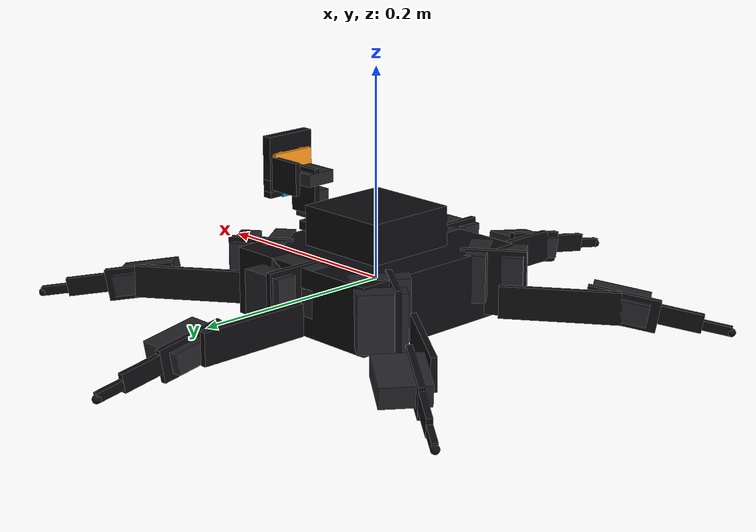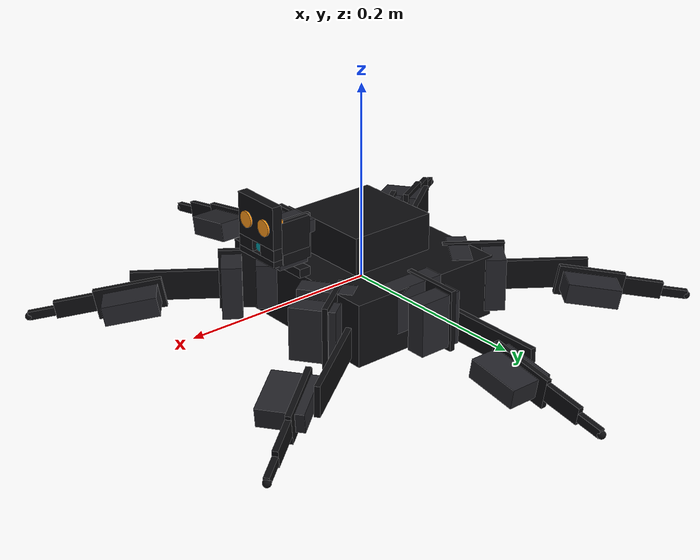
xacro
<?xml version="1.0"?>
<robot name="gerry" xmlns:xacro="http://www.ros.org/wiki/xacro">

    <xacro:property name="joint0_height" value="0.0318"/>
    <xacro:property name="joint1_offset_x" value="0.0333"/>
    <xacro:property name="joint1_offset_y" value="0.0118"/>  <!-- mirrored by side -->
    <xacro:property name="joint1_offset_z" value="-0.0393"/>
    <xacro:property name="link1_length" value="0.090"/>
    <xacro:property name="joint2_offset" value="${radians(10)}"/>  <!-- link 2's bend at joint 2 = 0 -->
    <xacro:property name="foot_offset_x" value="0.1115"/>
    <xacro:property name="foot_offset_y" value="0.0108"/>  <!-- mirrored by side -->
    <xacro:property name="foot_offset_z" value="-0.0058"/>

    <material name="frame"><color rgba="0.05 0.05 0.06 1"/></material>
    <material name="servo"><color rgba="0.14 0.14 0.16 1"/></material>
    <material name="ultrasonic"><color rgba="1.0 0.6 0.1 1"/></material>
    <material name="camera"><color rgba="0.0 0.6 0.65 1"/></material>

    <!-- one part, drawn and colliding -->
    <xacro:macro name="part" params="xyz rpy:='0 0 0' material:=frame *shape">
        <visual>
            <origin xyz="${xyz}" rpy="${rpy}"/>
            <geometry><xacro:insert_block name="shape"/></geometry>
            <material name="${material}"/>
        </visual>
        <collision>
            <origin xyz="${xyz}" rpy="${rpy}"/>
            <geometry><xacro:insert_block name="shape"/></geometry>
        </collision>
    </xacro:macro>

    <!-- mass and inertia about the centre of mass, from ml/hexai's CAD solve with each servo on the link it turns with -->
    <xacro:macro name="mass_properties" params="xyz mass ixx iyy izz ixy:=0 ixz:=0 iyz:=0">
        <inertial>
            <origin xyz="${xyz}"/>
            <mass value="${mass}"/>
            <inertia ixx="${ixx}" ixy="${ixy}" ixz="${ixz}" iyy="${iyy}" iyz="${iyz}" izz="${izz}"/>
        </inertial>
    </xacro:macro>

    <!-- one strip of the head's front plate; edges in mm in the robot frame -->
    <xacro:macro name="plate" params="y0 y1 z0 z1">
        <xacro:part xyz="0.029 ${(y0 + y1) / 2000} ${(z0 + z1) / 2000 - 0.0822}">
            <box size="0.010 ${(y1 - y0) / 1000} ${(z1 - z0) / 1000}"/>
        </xacro:part>
    </xacro:macro>

    <link name="base_link">
        <xacro:part xyz="0 0 0"><box size="0.167 0.190 0.0636"/></xacro:part>  <!-- main chassis -->
        <xacro:part xyz="0 0 0.0509"><box size="0.092 0.092 0.0381"/></xacro:part>  <!-- top cover -->
        <xacro:part xyz="0.083 0 0.0362"><box size="0.012 0.032 0.0088"/></xacro:part>  <!-- pan horn and its mount -->
    </link>

    <!-- the body's mass, on a child link since KDL ignores mass on the root -->
    <joint name="base_inertia_mount" type="fixed">
        <parent link="base_link"/>
        <child link="base_inertia"/>
    </joint>

    <link name="base_inertia">
        <xacro:mass_properties xyz="0.00524 -0.0001 0.00861" mass="0.7308" ixx="2.137e-3" iyy="2.135e-3" izz="2.393e-3" ixy="-1.198e-5" ixz="-9.502e-5" iyz="-1.374e-6"/>
    </link>

    <!-- side is +1 on the left, -1 on the right -->
    <xacro:macro name="leg" params="index x y yaw side">
        <joint name="leg${index}_joint0" type="revolute">
            <parent link="base_link"/>
            <child link="leg${index}_link0"/>
            <origin xyz="${x} ${y} ${joint0_height}" rpy="0 0 ${yaw}"/>
            <axis xyz="0 0 1"/>
            <limit lower="${-pi/2}" upper="${pi/2}" effort="1.0" velocity="5.0"/>
        </joint>

        <link name="leg${index}_link0">
            <xacro:mass_properties xyz="0.01717 ${-side*0.01049} -0.0248" mass="0.1337" ixx="4.691e-5" iyy="7.186e-5" izz="6.668e-5" ixy="${side*2.235e-6}" ixz="6.123e-6" iyz="${-side*5.939e-7}"/>
            <xacro:part xyz="0 ${-side*0.010} -0.0224" material="servo"><box size="0.020 0.054 0.045"/></xacro:part>  <!-- joint 0's servo -->
            <xacro:part xyz="0.0154 0 -0.0293"><box size="0.061 0.0054 0.062"/></xacro:part>  <!-- bracket plate -->
            <xacro:part xyz="0.0332 ${-side*0.0127} -0.0293" material="servo"><box size="0.020 0.045 0.054"/></xacro:part>  <!-- joint 1's servo -->
        </link>

        <joint name="leg${index}_joint1" type="revolute">
            <parent link="leg${index}_link0"/>
            <child link="leg${index}_link1"/>
            <origin xyz="${joint1_offset_x} ${side*joint1_offset_y} ${joint1_offset_z}"/>
            <axis xyz="0 1 0"/>  <!-- positive is down -->
            <limit lower="${-pi/2}" upper="${pi/2}" effort="1.0" velocity="5.0"/>
        </joint>

        <link name="leg${index}_link1">
            <xacro:mass_properties xyz="0.04446 ${side*0.00235} 0.0041" mass="0.0127" ixx="4.952e-6" iyy="9.717e-6" izz="1.222e-5" ixy="${side*9.084e-8}" ixz="-2.539e-7" iyz="${side*1.19e-7}"/>
            <xacro:part xyz="0.0446 ${side*0.0047} -0.003"><box size="0.111 0.0056 0.0306"/></xacro:part>  <!-- plate -->
        </link>

        <joint name="leg${index}_joint2" type="revolute">
            <parent link="leg${index}_link1"/>
            <child link="leg${index}_link2"/>
            <origin xyz="${link1_length} 0 0" rpy="0 ${joint2_offset} 0"/>
            <axis xyz="0 1 0"/>  <!-- positive is down -->
            <limit lower="${-joint2_offset}" upper="${pi - joint2_offset}" effort="1.0" velocity="5.0"/>
        </joint>

        <link name="leg${index}_link2">
            <xacro:mass_properties xyz="0.01303 ${-side*0.02281} 0.0006" mass="0.0716" ixx="1.744e-5" iyy="3.756e-5" izz="3.618e-5" ixy="${-side*2.797e-6}" ixz="-2.305e-7" iyz="${side*2.594e-9}"/>
            <!-- bar, tapering toward the foot -->
            <xacro:part xyz="0.011 ${-side*0.0111} -0.0064"><box size="0.068 0.0057 0.0308"/></xacro:part>
            <xacro:part xyz="0.065 ${-side*0.0111} -0.0036"><box size="0.040 0.0057 0.0176"/></xacro:part>
            <xacro:part xyz="0.0983 ${-side*0.0111} -0.0046"><box size="0.0265 0.0057 0.0088"/></xacro:part>
            <xacro:part xyz="0.0085 ${-side*0.022} -0.0058" material="servo"><box size="0.054 0.0451 0.0201"/></xacro:part>  <!-- joint 2's servo -->
        </link>

        <joint name="leg${index}_foot_mount" type="fixed">
            <parent link="leg${index}_link2"/>
            <child link="leg${index}_foot"/>
            <origin xyz="${foot_offset_x} ${-side*foot_offset_y} ${foot_offset_z}"/>
        </joint>

        <link name="leg${index}_foot">
            <xacro:part xyz="0 0 0"><sphere radius="0.004"/></xacro:part>
        </link>
    </xacro:macro>

    <!-- hexai's order, leg 0 front right then clockwise from above -->
    <xacro:leg index="0" x="0.0759" y="-0.0551" yaw="${radians(-36)}" side="-1"/>
    <xacro:leg index="1" x="0.0" y="-0.0850" yaw="${radians(-90)}" side="-1"/>
    <xacro:leg index="2" x="-0.0759" y="-0.0551" yaw="${radians(-144)}" side="-1"/>
    <xacro:leg index="3" x="-0.0759" y="0.0551" yaw="${radians(144)}" side="1"/>
    <xacro:leg index="4" x="0.0" y="0.0850" yaw="${radians(90)}" side="1"/>
    <xacro:leg index="5" x="0.0759" y="0.0551" yaw="${radians(36)}" side="1"/>

    <joint name="head_joint0" type="revolute">
        <parent link="base_link"/>
        <child link="head_link0"/>
        <origin xyz="0.083 0 0.0413"/>
        <axis xyz="0 0 1"/>  <!-- positive is left -->
        <limit lower="${-pi/2}" upper="${pi/2}" effort="0.1" velocity="5.0"/>
    </joint>

    <link name="head_link0">
        <xacro:mass_properties xyz="0.00752 0.00204 0.02822" mass="0.0251" ixx="6.586e-6" iyy="8.462e-6" izz="4.394e-6" ixy="6.622e-7" ixz="-2.753e-7" iyz="-1.716e-7"/>
        <xacro:part xyz="0.0052 0 0.0144" material="servo"><box size="0.0328 0.0122 0.0302"/></xacro:part>  <!-- pan servo -->
        <xacro:part xyz="0.0052 0.0086 0.0285"><box size="0.0326 0.005 0.0448"/></xacro:part>  <!-- upright bracket -->
        <xacro:part xyz="0.0052 0.0026 0.0409" material="servo"><box size="0.0328 0.0302 0.0122"/></xacro:part>  <!-- tilt servo -->
    </link>

    <joint name="head_joint1" type="revolute">
        <parent link="head_link0"/>
        <child link="head_link1"/>
        <origin xyz="0.0104 0 0.0409"/>
        <axis xyz="0 1 0"/>  <!-- positive is down -->
        <limit lower="${-pi/2}" upper="${radians(40)}" effort="0.1" velocity="5.0"/>
    </joint>

    <link name="head_link1">
        <xacro:mass_properties xyz="0.0274 0.00123 0.00528" mass="0.0281" ixx="1.098e-5" iyy="7.215e-6" izz="7.746e-6" ixy="1.925e-7" ixz="-2.802e-7" iyz="1.785e-8"/>
        <xacro:part xyz="0.0094 0.022 0"><box size="0.0388 0.005 0.032"/></xacro:part>  <!-- tilt bracket -->
        <!-- front plate around the mouth hole -->
        <xacro:plate y0="-25" y1="27" z0="58" z1="64"/>
        <xacro:plate y0="-25" y1="-5" z0="64" z1="75.5"/>
        <xacro:plate y0="7" y1="27" z0="64" z1="75.5"/>
        <xacro:plate y0="-25" y1="27" z0="75.5" z1="117.8"/>
        <xacro:part xyz="0.0219 0.0011 0.0091" material="ultrasonic"><box size="0.004 0.0455 0.020"/></xacro:part>  <!-- ultrasonic board -->
        <xacro:part xyz="0.0299 0.014 0.012" rpy="0 ${pi/2} 0" material="ultrasonic"><cylinder radius="0.008" length="0.012"/></xacro:part>  <!-- ultrasonic transducers -->
        <xacro:part xyz="0.0299 -0.012 0.012" rpy="0 ${pi/2} 0" material="ultrasonic"><cylinder radius="0.008" length="0.012"/></xacro:part>
        <xacro:part xyz="0.0225 0.001 -0.0125" material="camera"><box size="0.002 0.025 0.024"/></xacro:part>  <!-- camera board -->
        <xacro:part xyz="0.0278 0.001 -0.0125" rpy="0 ${pi/2} 0" material="camera"><cylinder radius="0.004" length="0.0076"/></xacro:part>  <!-- camera lens -->
    </link>

    <joint name="camera_mount" type="fixed">
        <parent link="head_link1"/>
        <child link="camera"/>
        <origin xyz="0.0316 0.001 -0.0125"/>  <!-- the lens front -->
    </joint>

    <link name="camera"/>

    <joint name="camera_optical_mount" type="fixed">  <!-- z out of the lens, x right, y down -->
        <parent link="camera"/>
        <child link="camera_optical"/>
        <origin rpy="${-pi/2} 0 ${-pi/2}"/>
    </joint>

    <link name="camera_optical"/>

    <joint name="ultrasonic_mount" type="fixed">  <!-- x along the beam -->
        <parent link="head_link1"/>
        <child link="ultrasonic"/>
        <origin xyz="0.0359 0.001 0.012"/>
    </joint>

    <link name="ultrasonic"/>

    <joint name="imu_mount" type="fixed">  <!-- the chip's x points right, its y forward -->
        <parent link="base_link"/>
        <child link="imu"/>
        <origin xyz="0.0399 -0.0086 0.0375" rpy="0 0 ${-pi/2}"/>
    </joint>

    <link name="imu"/>

</robot>
